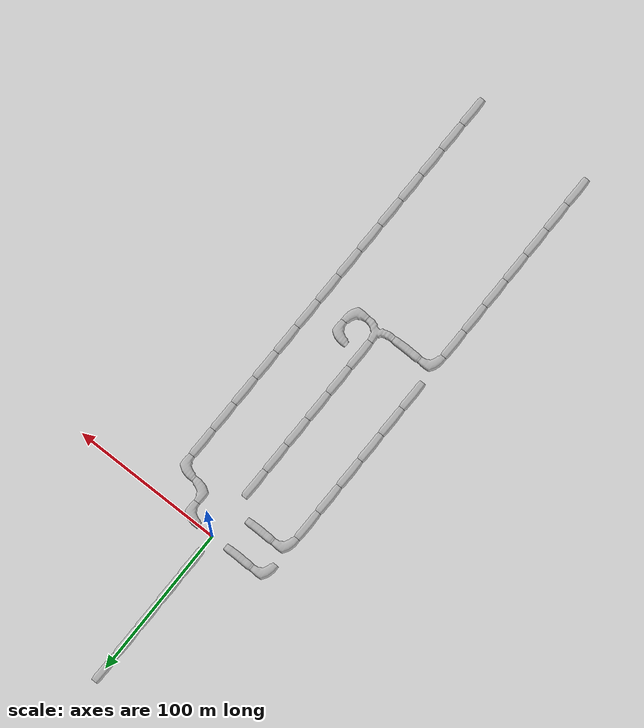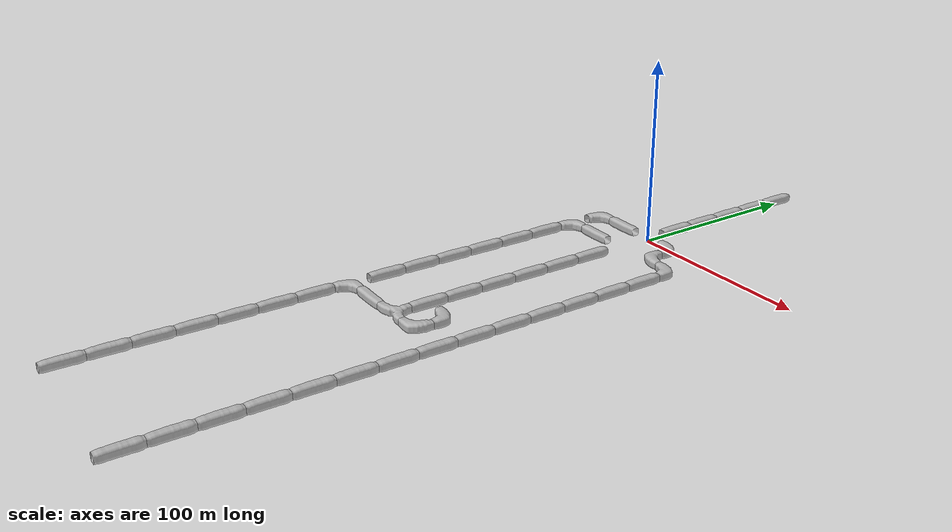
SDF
<sdf version="1.6">
 <world name="cave_4000_4">
  <include>
   <static>true</static>
   <name>cave_1_0</name>
   <pose>20 0 0 0 0 3.141592653589793</pose>
   <uri>model://cave_L_20m</uri>
  </include>
  <include>
   <static>true</static>
   <name>cave_1_-1</name>
   <pose>20 -20 0 0 0 0.0</pose>
   <uri>model://cave_L_20m</uri>
  </include>
  <include>
   <static>true</static>
   <name>cave_2_-1</name>
   <pose>40 -20 0 0 0 3.141592653589793</pose>
   <uri>model://cave_L_20m</uri>
  </include>
  <include>
   <static>true</static>
   <name>cave_2_-2</name>
   <pose>40 -40 0 0 0 0.0</pose>
   <uri>model://cave_straight_20m</uri>
  </include>
  <include>
   <static>true</static>
   <name>cave_2_-3</name>
   <pose>40 -60 0 0 0 0.0</pose>
   <uri>model://cave_straight_20m</uri>
  </include>
  <include>
   <static>true</static>
   <name>cave_2_-4</name>
   <pose>40 -80 0 0 0 0.0</pose>
   <uri>model://cave_straight_20m</uri>
  </include>
  <include>
   <static>true</static>
   <name>cave_2_-5</name>
   <pose>40 -100 0 0 0 0.0</pose>
   <uri>model://cave_straight_20m</uri>
  </include>
  <include>
   <static>true</static>
   <name>cave_2_-6</name>
   <pose>40 -120 0 0 0 0.0</pose>
   <uri>model://cave_straight_20m</uri>
  </include>
  <include>
   <static>true</static>
   <name>cave_2_-7</name>
   <pose>40 -140 0 0 0 0.0</pose>
   <uri>model://cave_straight_20m</uri>
  </include>
  <include>
   <static>true</static>
   <name>cave_2_-8</name>
   <pose>40 -160 0 0 0 0.0</pose>
   <uri>model://cave_straight_20m</uri>
  </include>
  <include>
   <static>true</static>
   <name>cave_2_-9</name>
   <pose>40 -180 0 0 0 0.0</pose>
   <uri>model://cave_straight_20m</uri>
  </include>
  <include>
   <static>true</static>
   <name>cave_2_-10</name>
   <pose>40 -200 0 0 0 0.0</pose>
   <uri>model://cave_straight_20m</uri>
  </include>
  <include>
   <static>true</static>
   <name>cave_2_-11</name>
   <pose>40 -220 0 0 0 0.0</pose>
   <uri>model://cave_straight_20m</uri>
  </include>
  <include>
   <static>true</static>
   <name>cave_2_-12</name>
   <pose>40 -240 0 0 0 0.0</pose>
   <uri>model://cave_straight_20m</uri>
  </include>
  <include>
   <static>true</static>
   <name>cave_2_-13</name>
   <pose>40 -260 0 0 0 0.0</pose>
   <uri>model://cave_straight_20m</uri>
  </include>
  <include>
   <static>true</static>
   <name>cave_2_-14</name>
   <pose>40 -280 0 0 0 0.0</pose>
   <uri>model://cave_straight_20m</uri>
  </include>
  <include>
   <static>true</static>
   <name>cave_2_-15</name>
   <pose>40 -300 0 0 0 0.0</pose>
   <uri>model://cave_straight_20m</uri>
  </include>
  <include>
   <static>true</static>
   <name>cave_0_-2</name>
   <pose>0 -40 0 0 0 0.0</pose>
   <uri>model://cave_straight_20m</uri>
  </include>
  <include>
   <static>true</static>
   <name>cave_0_-3</name>
   <pose>0 -60 0 0 0 0.0</pose>
   <uri>model://cave_straight_20m</uri>
  </include>
  <include>
   <static>true</static>
   <name>cave_0_-4</name>
   <pose>0 -80 0 0 0 0.0</pose>
   <uri>model://cave_straight_20m</uri>
  </include>
  <include>
   <static>true</static>
   <name>cave_0_-5</name>
   <pose>0 -100 0 0 0 0.0</pose>
   <uri>model://cave_straight_20m</uri>
  </include>
  <include>
   <static>true</static>
   <name>cave_0_-6</name>
   <pose>0 -120 0 0 0 0.0</pose>
   <uri>model://cave_straight_20m</uri>
  </include>
  <include>
   <static>true</static>
   <name>cave_0_-7</name>
   <pose>0 -140 0 0 0 0.0</pose>
   <uri>model://cave_straight_20m</uri>
  </include>
  <include>
   <static>true</static>
   <name>cave_0_-8</name>
   <pose>0 -160 0 0 0 0.0</pose>
   <uri>model://cave_3way_20m</uri>
  </include>
  <include>
   <static>true</static>
   <name>cave_1_-8</name>
   <pose>20 -160 0 0 0 1.5707963267948966</pose>
   <uri>model://cave_L_20m</uri>
  </include>
  <include>
   <static>true</static>
   <name>cave_1_-7</name>
   <pose>20 -140 0 0 0 3.141592653589793</pose>
   <uri>model://cave_L_20m</uri>
  </include>
  <include>
   <static>true</static>
   <name>cave_-1_-8</name>
   <pose>-20 -160 0 0 0 1.5707963267948966</pose>
   <uri>model://cave_straight_20m</uri>
  </include>
  <include>
   <static>true</static>
   <name>cave_-2_-8</name>
   <pose>-40 -160 0 0 0 -1.5707963267948966</pose>
   <uri>model://cave_L_20m</uri>
  </include>
  <include>
   <static>true</static>
   <name>cave_-2_-9</name>
   <pose>-40 -180 0 0 0 0.0</pose>
   <uri>model://cave_straight_20m</uri>
  </include>
  <include>
   <static>true</static>
   <name>cave_-2_-10</name>
   <pose>-40 -200 0 0 0 0.0</pose>
   <uri>model://cave_straight_20m</uri>
  </include>
  <include>
   <static>true</static>
   <name>cave_-2_-11</name>
   <pose>-40 -220 0 0 0 0.0</pose>
   <uri>model://cave_straight_20m</uri>
  </include>
  <include>
   <static>true</static>
   <name>cave_-2_-12</name>
   <pose>-40 -240 0 0 0 0.0</pose>
   <uri>model://cave_straight_20m</uri>
  </include>
  <include>
   <static>true</static>
   <name>cave_-2_-13</name>
   <pose>-40 -260 0 0 0 0.0</pose>
   <uri>model://cave_straight_20m</uri>
  </include>
  <include>
   <static>true</static>
   <name>cave_-2_-14</name>
   <pose>-40 -280 0 0 0 0.0</pose>
   <uri>model://cave_straight_20m</uri>
  </include>
  <include>
   <static>true</static>
   <name>cave_-2_-15</name>
   <pose>-40 -300 0 0 0 0.0</pose>
   <uri>model://cave_straight_20m</uri>
  </include>
  <include>
   <static>true</static>
   <name>cave_-1_-1</name>
   <pose>-20 -20 0 0 0 1.5707963267948966</pose>
   <uri>model://cave_straight_20m</uri>
  </include>
  <include>
   <static>true</static>
   <name>cave_-2_-1</name>
   <pose>-40 -20 0 0 0 -1.5707963267948966</pose>
   <uri>model://cave_L_20m</uri>
  </include>
  <include>
   <static>true</static>
   <name>cave_-2_-2</name>
   <pose>-40 -40 0 0 0 0.0</pose>
   <uri>model://cave_straight_20m</uri>
  </include>
  <include>
   <static>true</static>
   <name>cave_-2_-3</name>
   <pose>-40 -60 0 0 0 0.0</pose>
   <uri>model://cave_straight_20m</uri>
  </include>
  <include>
   <static>true</static>
   <name>cave_-2_-4</name>
   <pose>-40 -80 0 0 0 0.0</pose>
   <uri>model://cave_straight_20m</uri>
  </include>
  <include>
   <static>true</static>
   <name>cave_-2_-5</name>
   <pose>-40 -100 0 0 0 0.0</pose>
   <uri>model://cave_straight_20m</uri>
  </include>
  <include>
   <static>true</static>
   <name>cave_-2_-6</name>
   <pose>-40 -120 0 0 0 0.0</pose>
   <uri>model://cave_straight_20m</uri>
  </include>
  <include>
   <static>true</static>
   <name>cave_-2_-7</name>
   <pose>-40 -140 0 0 0 0.0</pose>
   <uri>model://cave_straight_20m</uri>
  </include>
  <include>
   <static>true</static>
   <name>cave_-1_0</name>
   <pose>-20 0 0 0 0 1.5707963267948966</pose>
   <uri>model://cave_straight_20m</uri>
  </include>
  <include>
   <static>true</static>
   <name>cave_-2_0</name>
   <pose>-40 0 0 0 0 -1.5707963267948966</pose>
   <uri>model://cave_L_20m</uri>
  </include>
  <include>
   <static>true</static>
   <name>cave_0_1</name>
   <pose>0 20 0 0 0 0.0</pose>
   <uri>model://cave_straight_20m</uri>
  </include>
  <include>
   <static>true</static>
   <name>cave_0_2</name>
   <pose>0 40 0 0 0 0.0</pose>
   <uri>model://cave_straight_20m</uri>
  </include>
  <include>
   <static>true</static>
   <name>cave_0_3</name>
   <pose>0 60 0 0 0 0.0</pose>
   <uri>model://cave_straight_20m</uri>
  </include>
  <include>
   <static>true</static>
   <name>cave_0_4</name>
   <pose>0 80 0 0 0 0.0</pose>
   <uri>model://cave_straight_20m</uri>
  </include>
  <include>
   <static>true</static>
   <name>cave_0_5</name>
   <pose>0 100 0 0 0 0.0</pose>
   <uri>model://cave_straight_20m</uri>
  </include>
 </world>
</sdf>
